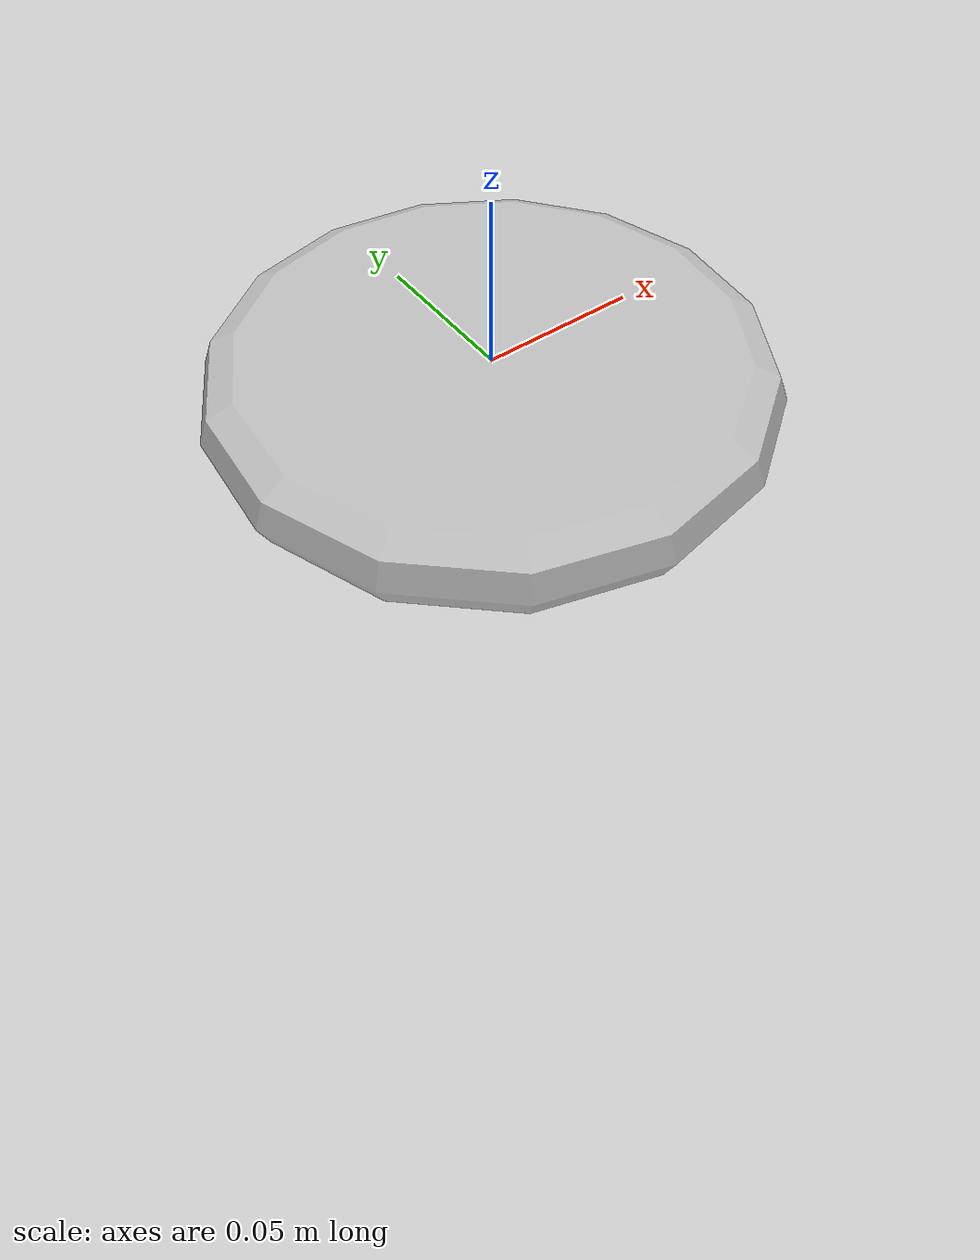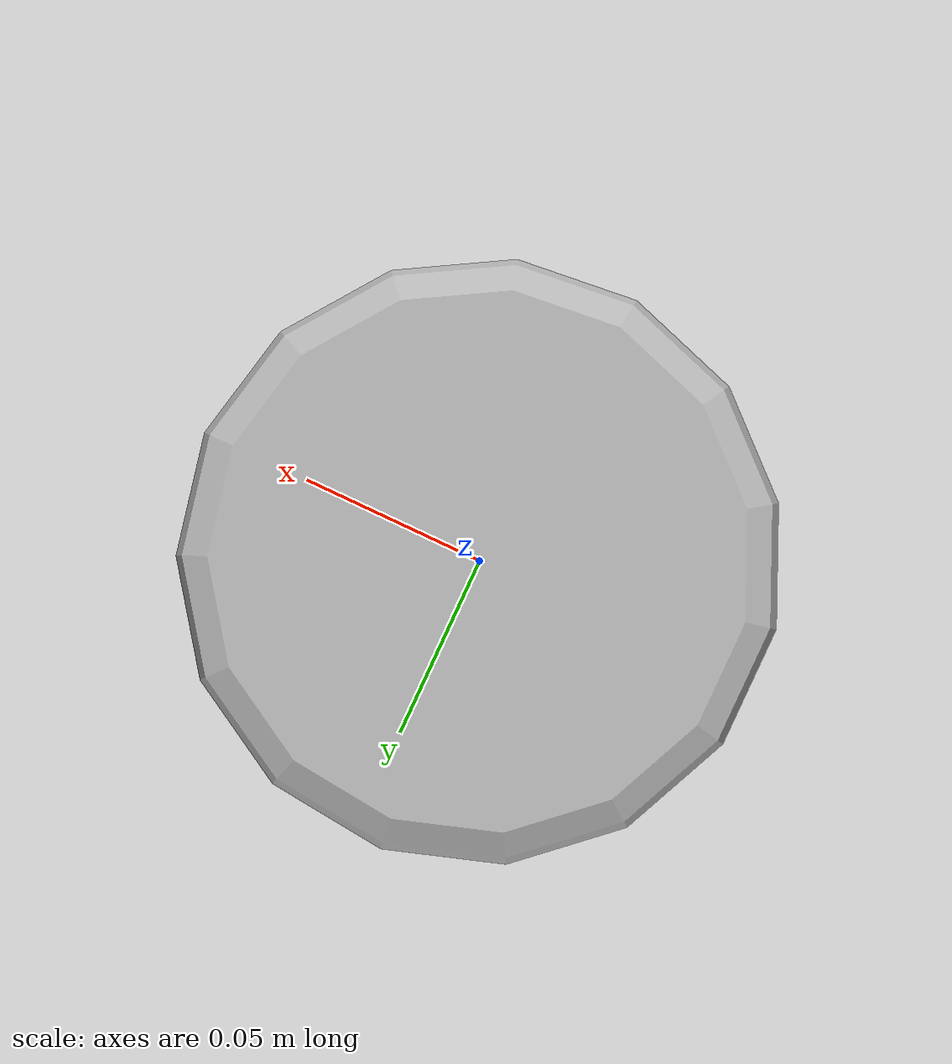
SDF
<?xml version="1.0"?>
<sdf version="1.7"
  xmlns:drake='drake.mit.edu'>
  <model name="pancake_convex">
    <pose>0 0 0 0 0 0</pose>
    <link name="pancake_convex">
      <inertial>
        <mass>0.06</mass>
        <inertia>
          <ixx>7.4e-05</ixx>
          <ixy>0.0</ixy>
          <ixz>0.0</ixz>
          <iyy>7.4e-05</iyy>
          <iyz>0.0</iyz>
          <izz>1.47e-4</izz>
        </inertia>
        <pose>0 0 0 0 0 0</pose>
      </inertial>
      <visual name="pancake_convex_visual">
        <geometry>
          <mesh>
            <scale>1 1 1</scale>
	    <uri>package://drake/examples/hydroelastic/two_spheres/pancake.obj</uri>
          </mesh>
        </geometry>
      </visual>
      <collision name="pancake_convex_collision">
        <geometry>
          <mesh>
            <drake:declare_convex />
            <scale>1 1 1</scale>
	    <uri>package://drake/examples/hydroelastic/two_spheres/pancake.obj</uri>
          </mesh>
        </geometry>
        <drake:proximity_properties>
	  <drake:relaxation_time>0.0</drake:relaxation_time>
          <drake:mesh_resolution_hint>0.2</drake:mesh_resolution_hint>
          <drake:compliant_hydroelastic/>
          <drake:hydroelastic_modulus>5e3</drake:hydroelastic_modulus>
          <drake:hunt_crossley_dissipation>1.5</drake:hunt_crossley_dissipation>
          <drake:mu_dynamic>1.0</drake:mu_dynamic>
        </drake:proximity_properties>
      </collision>
    </link>
  </model>
</sdf>
